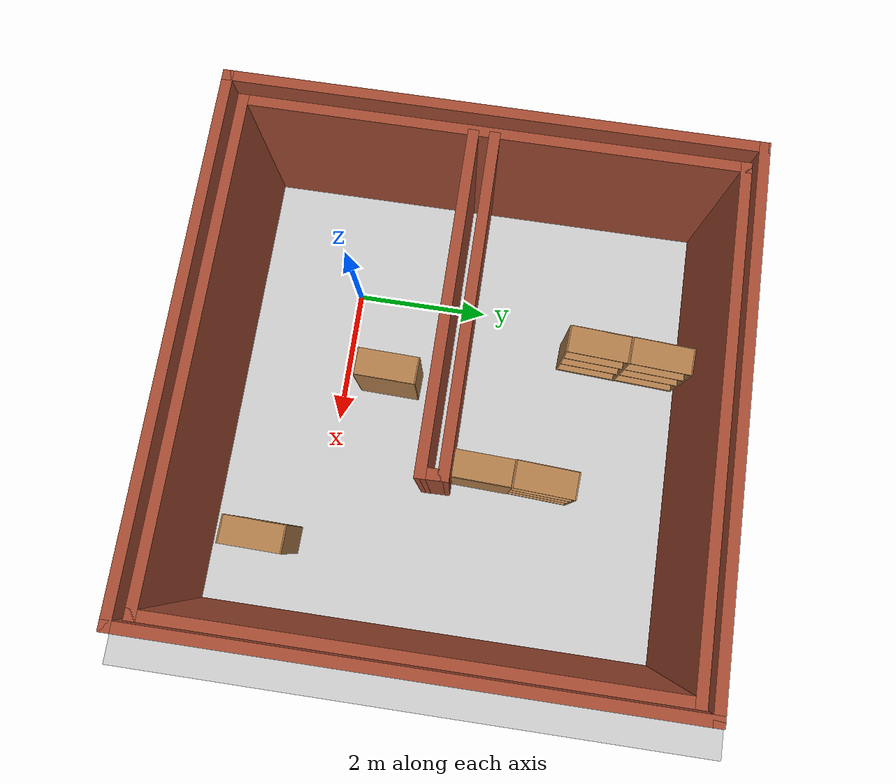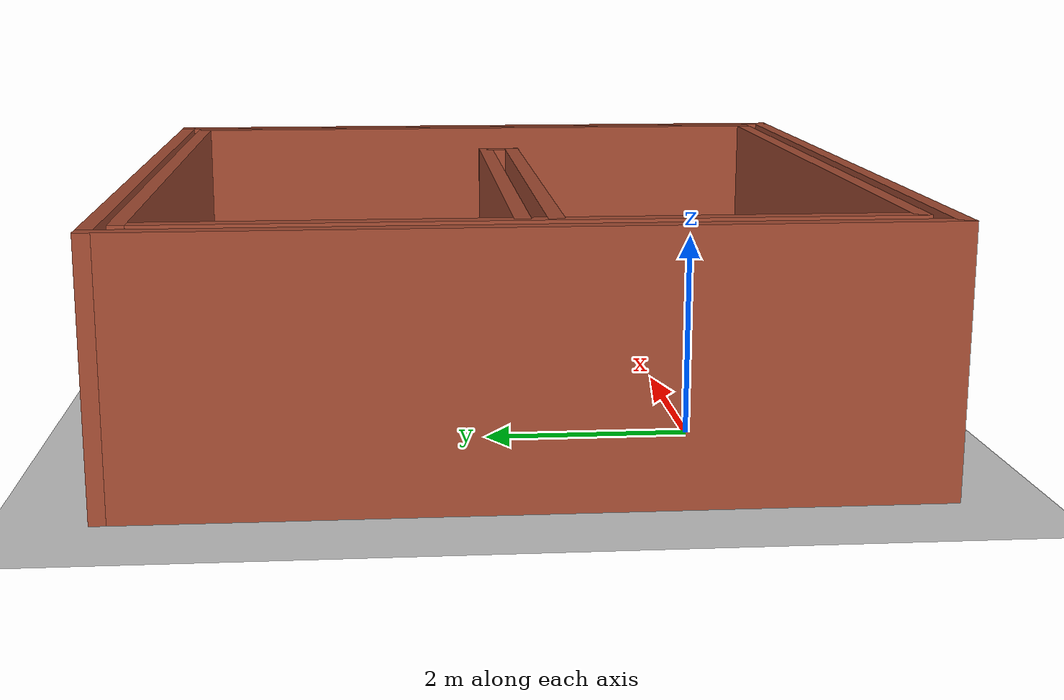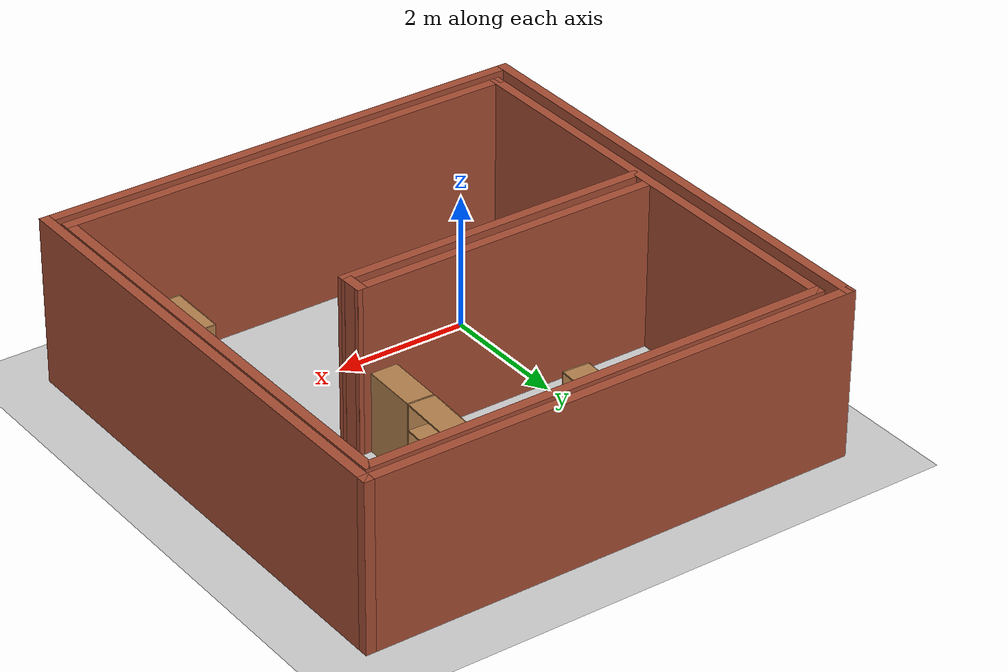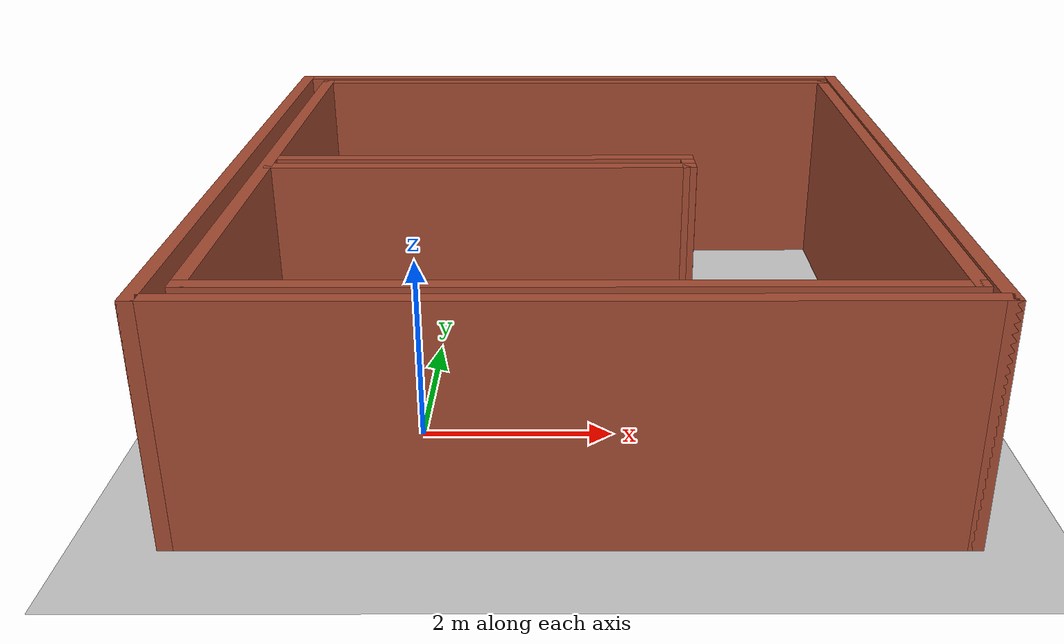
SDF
<sdf version="1.6">
 <world name="default">
  <light name="sun" type="directional">
   <pose>0 0 10 0 -0 0</pose>
   <diffuse>0.8 0.8 0.8 1</diffuse>
   <specular>0.2 0.2 0.2 1</specular>
   <attenuation>
    <range>1000</range>
    <constant>0.9</constant>
    <linear>0.01</linear>
    <quadratic>0.001</quadratic>
   </attenuation>
   <direction>-0.5 0.1 -0.9</direction>
  </light>
  <model name="ground_plane">
   <static>1</static>
   <link name="link">
    <collision name="collision">
     <geometry><plane><normal>0 0 1</normal><size>100 100</size></plane></geometry>
     <surface><friction><ode><mu>100</mu><mu2>50</mu2></ode></friction></surface>
    </collision>
    <visual name="visual">
     <cast_shadows>0</cast_shadows>
     <geometry><plane><normal>0 0 1</normal><size>100 100</size></plane></geometry>
     <material>
      <script><uri>file://media/materials/scripts/gazebo.material</uri><name>Gazebo/Grey</name></script>
     </material>
    </visual>
   </link>
  </model>
  <gravity>0 0 -9.8</gravity>
  <magnetic_field>6e-06 2.3e-05 -4.2e-05</magnetic_field>
  <atmosphere type="adiabatic"/>
  <physics name="default_physics" default="0" type="ode">
   <max_step_size>0.001</max_step_size>
   <real_time_factor>1</real_time_factor>
   <real_time_update_rate>1000</real_time_update_rate>
  </physics>
  <scene><ambient>0.4 0.4 0.4 1</ambient><background>0.7 0.7 0.7 1</background><shadows>1</shadows></scene>
  <spherical_coordinates>
   <surface_model>EARTH_WGS84</surface_model>
   <latitude_deg>0</latitude_deg>
   <longitude_deg>0</longitude_deg>
   <elevation>0</elevation>
   <heading_deg>0</heading_deg>
  </spherical_coordinates>
  <model name="room_mini">
   <pose>1.55832 1.74079 0 0 -0 0</pose>
   <link name="Wall_0">
    <collision name="Wall_0_Collision">
     <geometry><box><size>7 0.15 2.5</size></box></geometry>
     <pose>0 0 1.25 0 -0 0</pose>
    </collision>
    <visual name="Wall_0_Visual">
     <pose>0 0 1.25 0 -0 0</pose>
     <geometry><box><size>7 0.15 2.5</size></box></geometry>
     <material>
      <script><uri>file://media/materials/scripts/gazebo.material</uri><name>Gazebo/Bricks</name></script>
      <ambient>1 1 1 1</ambient>
     </material>
     <meta><layer>0</layer></meta>
    </visual>
    <pose>0.076061 -3.39774 0 0 -0 0</pose>
   </link>
   <link name="Wall_13">
    <collision name="Wall_13_Collision">
     <geometry><box><size>4.75 0.15 2.5</size></box></geometry>
     <pose>0 0 1.25 0 -0 0</pose>
    </collision>
    <visual name="Wall_13_Visual">
     <pose>0 0 1.25 0 -0 0</pose>
     <geometry><box><size>4.75 0.15 2.5</size></box></geometry>
     <material>
      <script><uri>file://media/materials/scripts/gazebo.material</uri><name>Gazebo/Bricks</name></script>
      <ambient>1 1 1 1</ambient>
     </material>
     <meta><layer>0</layer></meta>
    </visual>
    <pose>-0.985198 -0.23 0 0 -0 0</pose>
   </link>
   <link name="Wall_16">
    <collision name="Wall_16_Collision">
     <geometry><box><size>0.441128 0.15 2.5</size></box></geometry>
     <pose>0 0 1.25 0 -0 0</pose>
    </collision>
    <visual name="Wall_16_Visual">
     <pose>0 0 1.25 0 -0 0</pose>
     <geometry><box><size>0.441128 0.15 2.5</size></box></geometry>
     <material>
      <script><uri>file://media/materials/scripts/gazebo.material</uri><name>Gazebo/Bricks</name></script>
      <ambient>1 1 1 1</ambient>
     </material>
     <meta><layer>0</layer></meta>
    </visual>
    <pose>1.31175 -0.084468 0 0 -0 -1.54982</pose>
   </link>
   <link name="Wall_2">
    <collision name="Wall_2_Collision">
     <geometry><box><size>7 0.15 2.5</size></box></geometry>
     <pose>0 0 1.25 0 -0 0</pose>
    </collision>
    <visual name="Wall_2_Visual">
     <pose>0 0 1.25 0 -0 0</pose>
     <geometry><box><size>7 0.15 2.5</size></box></geometry>
     <material>
      <script><uri>file://media/materials/scripts/gazebo.material</uri><name>Gazebo/Bricks</name></script>
      <ambient>1 1 1 1</ambient>
     </material>
     <meta><layer>0</layer></meta>
    </visual>
    <pose>3.50116 0.027424 0 0 -0 1.57077</pose>
   </link>
   <link name="Wall_20">
    <collision name="Wall_20_Collision">
     <geometry><box><size>7.5 0.15 2.5</size></box></geometry>
     <pose>0 0 1.25 0 -0 0</pose>
    </collision>
    <visual name="Wall_20_Visual">
     <pose>0 0 1.25 0 -0 0</pose>
     <geometry><box><size>7.5 0.15 2.5</size></box></geometry>
     <material>
      <script><uri>file://media/materials/scripts/gazebo.material</uri><name>Gazebo/Bricks</name></script>
      <ambient>1 1 1 1</ambient>
     </material>
     <meta><layer>0</layer></meta>
    </visual>
    <pose>-3.675 0 0 0 -0 -1.5708</pose>
   </link>
   <link name="Wall_23">
    <collision name="Wall_23_Collision">
     <geometry><box><size>7.5 0.15 2.5</size></box></geometry>
     <pose>0 0 1.25 0 -0 0</pose>
    </collision>
    <visual name="Wall_23_Visual">
     <pose>0 0 1.25 0 -0 0</pose>
     <geometry><box><size>7.5 0.15 2.5</size></box></geometry>
     <material>
      <script><uri>file://media/materials/scripts/gazebo.material</uri><name>Gazebo/Bricks</name></script>
      <ambient>1 1 1 1</ambient>
     </material>
     <meta><layer>0</layer></meta>
    </visual>
    <pose>0 -3.675 0 0 -0 0</pose>
   </link>
   <link name="Wall_24">
    <collision name="Wall_24_Collision">
     <geometry><box><size>7.5 0.15 2.5</size></box></geometry>
     <pose>0 0 1.25 0 -0 0</pose>
    </collision>
    <visual name="Wall_24_Visual">
     <pose>0 0 1.25 0 -0 0</pose>
     <geometry><box><size>7.5 0.15 2.5</size></box></geometry>
     <material>
      <script><uri>file://media/materials/scripts/gazebo.material</uri><name>Gazebo/Bricks</name></script>
      <ambient>1 1 1 1</ambient>
     </material>
     <meta><layer>0</layer></meta>
    </visual>
    <pose>3.675 0 0 0 -0 1.5708</pose>
   </link>
   <link name="Wall_25">
    <collision name="Wall_25_Collision">
     <geometry><box><size>7.5 0.15 2.5</size></box></geometry>
     <pose>0 0 1.25 0 -0 0</pose>
    </collision>
    <visual name="Wall_25_Visual">
     <pose>0 0 1.25 0 -0 0</pose>
     <geometry><box><size>7.5 0.15 2.5</size></box></geometry>
     <material>
      <script><uri>file://media/materials/scripts/gazebo.material</uri><name>Gazebo/Bricks</name></script>
      <ambient>1 1 1 1</ambient>
     </material>
     <meta><layer>0</layer></meta>
    </visual>
    <pose>0 3.675 0 0 -0 3.14159</pose>
   </link>
   <link name="Wall_3">
    <collision name="Wall_3_Collision">
     <geometry><box><size>7 0.15 2.5</size></box></geometry>
     <pose>0 0 1.25 0 -0 0</pose>
    </collision>
    <visual name="Wall_3_Visual">
     <pose>0 0 1.25 0 -0 0</pose>
     <geometry><box><size>7 0.15 2.5</size></box></geometry>
     <material>
      <script><uri>file://media/materials/scripts/gazebo.material</uri><name>Gazebo/Bricks</name></script>
      <ambient>1 1 1 1</ambient>
     </material>
     <meta><layer>0</layer></meta>
    </visual>
    <pose>0.076264 3.45259 0 0 -0 3.14159</pose>
   </link>
   <link name="Wall_4">
    <collision name="Wall_4_Collision">
     <geometry><box><size>7 0.15 2.5</size></box></geometry>
     <pose>0 0 1.25 0 -0 0</pose>
    </collision>
    <visual name="Wall_4_Visual">
     <pose>0 0 1.25 0 -0 0</pose>
     <geometry><box><size>7 0.15 2.5</size></box></geometry>
     <material>
      <script><uri>file://media/materials/scripts/gazebo.material</uri><name>Gazebo/Bricks</name></script>
      <ambient>1 1 1 1</ambient>
     </material>
     <meta><layer>0</layer></meta>
    </visual>
    <pose>-3.34884 0.027424 0 0 -0 -1.57083</pose>
   </link>
   <link name="Wall_6">
    <collision name="Wall_6_Collision">
     <geometry><box><size>4.75 0.15 2.5</size></box></geometry>
     <pose>0 0 1.25 0 -0 0</pose>
    </collision>
    <visual name="Wall_6_Visual">
     <pose>0 0 1.25 0 -0 0</pose>
     <geometry><box><size>4.75 0.15 2.5</size></box></geometry>
     <material>
      <script><uri>file://media/materials/scripts/gazebo.material</uri><name>Gazebo/Bricks</name></script>
      <ambient>1 1 1 1</ambient>
     </material>
     <meta><layer>0</layer></meta>
    </visual>
    <pose>-0.991303 0.061064 0 0 -0 0</pose>
   </link>
   <static>1</static>
  </model>
  <model name="bookshelf">
   <static>1</static>
   <link name="link">
    <inertial><mass>1</mass></inertial>
    <collision name="back">
     <pose>0 0.005 0.6 0 -0 0</pose>
     <geometry><box><size>0.9 0.01 1.2</size></box></geometry>
    </collision>
    <visual name="visual1">
     <pose>0 0.005 0.6 0 -0 0</pose>
     <geometry><box><size>0.9 0.01 1.2</size></box></geometry>
     <material>
      <script><uri>file://media/materials/scripts/gazebo.material</uri><name>Gazebo/Wood</name></script>
     </material>
    </visual>
    <collision name="left_side">
     <pose>0.45 -0.195 0.6 0 -0 0</pose>
     <geometry><box><size>0.02 0.4 1.2</size></box></geometry>
    </collision>
    <visual name="visual2">
     <pose>0.45 -0.195 0.6 0 -0 0</pose>
     <geometry><box><size>0.02 0.4 1.2</size></box></geometry>
     <material>
      <script><uri>file://media/materials/scripts/gazebo.material</uri><name>Gazebo/Wood</name></script>
     </material>
    </visual>
    <collision name="right_side">
     <pose>-0.45 -0.195 0.6 0 -0 0</pose>
     <geometry><box><size>0.02 0.4 1.2</size></box></geometry>
    </collision>
    <visual name="visual3">
     <pose>-0.45 -0.195 0.6 0 -0 0</pose>
     <geometry><box><size>0.02 0.4 1.2</size></box></geometry>
     <material>
      <script><uri>file://media/materials/scripts/gazebo.material</uri><name>Gazebo/Wood</name></script>
     </material>
    </visual>
    <collision name="bottom">
     <pose>0 -0.195 0.03 0 -0 0</pose>
     <geometry><box><size>0.88 0.4 0.06</size></box></geometry>
    </collision>
    <visual name="visual4">
     <pose>0 -0.195 0.03 0 -0 0</pose>
     <geometry><box><size>0.88 0.4 0.06</size></box></geometry>
     <material>
      <script><uri>file://media/materials/scripts/gazebo.material</uri><name>Gazebo/Wood</name></script>
     </material>
    </visual>
    <collision name="top">
     <pose>0 -0.195 1.19 0 -0 0</pose>
     <geometry><box><size>0.88 0.4 0.02</size></box></geometry>
    </collision>
    <visual name="visual5">
     <pose>0 -0.195 1.19 0 -0 0</pose>
     <geometry><box><size>0.88 0.4 0.02</size></box></geometry>
     <material>
      <script><uri>file://media/materials/scripts/gazebo.material</uri><name>Gazebo/Wood</name></script>
     </material>
    </visual>
    <collision name="low_shelf">
     <pose>0 -0.195 0.43 0 -0 0</pose>
     <geometry><box><size>0.88 0.4 0.02</size></box></geometry>
    </collision>
    <visual name="visual6">
     <pose>0 -0.195 0.43 0 -0 0</pose>
     <geometry><box><size>0.88 0.4 0.02</size></box></geometry>
     <material>
      <script><uri>file://media/materials/scripts/gazebo.material</uri><name>Gazebo/Wood</name></script>
     </material>
    </visual>
    <collision name="high_shelf">
     <pose>0 -0.195 0.8 0 -0 0</pose>
     <geometry><box><size>0.88 0.4 0.02</size></box></geometry>
    </collision>
    <visual name="visual7">
     <pose>0 -0.195 0.8 0 -0 0</pose>
     <geometry><box><size>0.88 0.4 0.02</size></box></geometry>
     <material>
      <script><uri>file://media/materials/scripts/gazebo.material</uri><name>Gazebo/Wood</name></script>
     </material>
    </visual>
   </link>
   <pose>1.50579 0.711158 0 0 0 -1.59655</pose>
  </model>
  <model name="bookshelf_0">
   <static>1</static>
   <link name="link">
    <inertial><mass>1</mass></inertial>
    <collision name="back">
     <pose>0 0.005 0.6 0 -0 0</pose>
     <geometry><box><size>0.9 0.01 1.2</size></box></geometry>
    </collision>
    <visual name="visual1">
     <pose>0 0.005 0.6 0 -0 0</pose>
     <geometry><box><size>0.9 0.01 1.2</size></box></geometry>
     <material>
      <script><uri>file://media/materials/scripts/gazebo.material</uri><name>Gazebo/Wood</name></script>
     </material>
    </visual>
    <collision name="left_side">
     <pose>0.45 -0.195 0.6 0 -0 0</pose>
     <geometry><box><size>0.02 0.4 1.2</size></box></geometry>
    </collision>
    <visual name="visual2">
     <pose>0.45 -0.195 0.6 0 -0 0</pose>
     <geometry><box><size>0.02 0.4 1.2</size></box></geometry>
     <material>
      <script><uri>file://media/materials/scripts/gazebo.material</uri><name>Gazebo/Wood</name></script>
     </material>
    </visual>
    <collision name="right_side">
     <pose>-0.45 -0.195 0.6 0 -0 0</pose>
     <geometry><box><size>0.02 0.4 1.2</size></box></geometry>
    </collision>
    <visual name="visual3">
     <pose>-0.45 -0.195 0.6 0 -0 0</pose>
     <geometry><box><size>0.02 0.4 1.2</size></box></geometry>
     <material>
      <script><uri>file://media/materials/scripts/gazebo.material</uri><name>Gazebo/Wood</name></script>
     </material>
    </visual>
    <collision name="bottom">
     <pose>0 -0.195 0.03 0 -0 0</pose>
     <geometry><box><size>0.88 0.4 0.06</size></box></geometry>
    </collision>
    <visual name="visual4">
     <pose>0 -0.195 0.03 0 -0 0</pose>
     <geometry><box><size>0.88 0.4 0.06</size></box></geometry>
     <material>
      <script><uri>file://media/materials/scripts/gazebo.material</uri><name>Gazebo/Wood</name></script>
     </material>
    </visual>
    <collision name="top">
     <pose>0 -0.195 1.19 0 -0 0</pose>
     <geometry><box><size>0.88 0.4 0.02</size></box></geometry>
    </collision>
    <visual name="visual5">
     <pose>0 -0.195 1.19 0 -0 0</pose>
     <geometry><box><size>0.88 0.4 0.02</size></box></geometry>
     <material>
      <script><uri>file://media/materials/scripts/gazebo.material</uri><name>Gazebo/Wood</name></script>
     </material>
    </visual>
    <collision name="low_shelf">
     <pose>0 -0.195 0.43 0 -0 0</pose>
     <geometry><box><size>0.88 0.4 0.02</size></box></geometry>
    </collision>
    <visual name="visual6">
     <pose>0 -0.195 0.43 0 -0 0</pose>
     <geometry><box><size>0.88 0.4 0.02</size></box></geometry>
     <material>
      <script><uri>file://media/materials/scripts/gazebo.material</uri><name>Gazebo/Wood</name></script>
     </material>
    </visual>
    <collision name="high_shelf">
     <pose>0 -0.195 0.8 0 -0 0</pose>
     <geometry><box><size>0.88 0.4 0.02</size></box></geometry>
    </collision>
    <visual name="visual7">
     <pose>0 -0.195 0.8 0 -0 0</pose>
     <geometry><box><size>0.88 0.4 0.02</size></box></geometry>
     <material>
      <script><uri>file://media/materials/scripts/gazebo.material</uri><name>Gazebo/Wood</name></script>
     </material>
    </visual>
   </link>
   <pose>3.74014 -0.731154 0 0 -0 1.55204</pose>
  </model>
  <model name="bookshelf_1">
   <static>1</static>
   <link name="link">
    <inertial><mass>1</mass></inertial>
    <collision name="back">
     <pose>0 0.005 0.6 0 -0 0</pose>
     <geometry><box><size>0.9 0.01 1.2</size></box></geometry>
    </collision>
    <visual name="visual1">
     <pose>0 0.005 0.6 0 -0 0</pose>
     <geometry><box><size>0.9 0.01 1.2</size></box></geometry>
     <material>
      <script><uri>file://media/materials/scripts/gazebo.material</uri><name>Gazebo/Wood</name></script>
     </material>
    </visual>
    <collision name="left_side">
     <pose>0.45 -0.195 0.6 0 -0 0</pose>
     <geometry><box><size>0.02 0.4 1.2</size></box></geometry>
    </collision>
    <visual name="visual2">
     <pose>0.45 -0.195 0.6 0 -0 0</pose>
     <geometry><box><size>0.02 0.4 1.2</size></box></geometry>
     <material>
      <script><uri>file://media/materials/scripts/gazebo.material</uri><name>Gazebo/Wood</name></script>
     </material>
    </visual>
    <collision name="right_side">
     <pose>-0.45 -0.195 0.6 0 -0 0</pose>
     <geometry><box><size>0.02 0.4 1.2</size></box></geometry>
    </collision>
    <visual name="visual3">
     <pose>-0.45 -0.195 0.6 0 -0 0</pose>
     <geometry><box><size>0.02 0.4 1.2</size></box></geometry>
     <material>
      <script><uri>file://media/materials/scripts/gazebo.material</uri><name>Gazebo/Wood</name></script>
     </material>
    </visual>
    <collision name="bottom">
     <pose>0 -0.195 0.03 0 -0 0</pose>
     <geometry><box><size>0.88 0.4 0.06</size></box></geometry>
    </collision>
    <visual name="visual4">
     <pose>0 -0.195 0.03 0 -0 0</pose>
     <geometry><box><size>0.88 0.4 0.06</size></box></geometry>
     <material>
      <script><uri>file://media/materials/scripts/gazebo.material</uri><name>Gazebo/Wood</name></script>
     </material>
    </visual>
    <collision name="top">
     <pose>0 -0.195 1.19 0 -0 0</pose>
     <geometry><box><size>0.88 0.4 0.02</size></box></geometry>
    </collision>
    <visual name="visual5">
     <pose>0 -0.195 1.19 0 -0 0</pose>
     <geometry><box><size>0.88 0.4 0.02</size></box></geometry>
     <material>
      <script><uri>file://media/materials/scripts/gazebo.material</uri><name>Gazebo/Wood</name></script>
     </material>
    </visual>
    <collision name="low_shelf">
     <pose>0 -0.195 0.43 0 -0 0</pose>
     <geometry><box><size>0.88 0.4 0.02</size></box></geometry>
    </collision>
    <visual name="visual6">
     <pose>0 -0.195 0.43 0 -0 0</pose>
     <geometry><box><size>0.88 0.4 0.02</size></box></geometry>
     <material>
      <script><uri>file://media/materials/scripts/gazebo.material</uri><name>Gazebo/Wood</name></script>
     </material>
    </visual>
    <collision name="high_shelf">
     <pose>0 -0.195 0.8 0 -0 0</pose>
     <geometry><box><size>0.88 0.4 0.02</size></box></geometry>
    </collision>
    <visual name="visual7">
     <pose>0 -0.195 0.8 0 -0 0</pose>
     <geometry><box><size>0.88 0.4 0.02</size></box></geometry>
     <material>
      <script><uri>file://media/materials/scripts/gazebo.material</uri><name>Gazebo/Wood</name></script>
     </material>
    </visual>
   </link>
   <pose>2.75993 2.28299 0 0 0 -1.60533</pose>
  </model>
  <model name="bookshelf_2">
   <static>1</static>
   <link name="link">
    <inertial><mass>1</mass></inertial>
    <collision name="back">
     <pose>0 0.005 0.6 0 -0 0</pose>
     <geometry><box><size>0.9 0.01 1.2</size></box></geometry>
    </collision>
    <visual name="visual1">
     <pose>0 0.005 0.6 0 -0 0</pose>
     <geometry><box><size>0.9 0.01 1.2</size></box></geometry>
     <material>
      <script><uri>file://media/materials/scripts/gazebo.material</uri><name>Gazebo/Wood</name></script>
     </material>
    </visual>
    <collision name="left_side">
     <pose>0.45 -0.195 0.6 0 -0 0</pose>
     <geometry><box><size>0.02 0.4 1.2</size></box></geometry>
    </collision>
    <visual name="visual2">
     <pose>0.45 -0.195 0.6 0 -0 0</pose>
     <geometry><box><size>0.02 0.4 1.2</size></box></geometry>
     <material>
      <script><uri>file://media/materials/scripts/gazebo.material</uri><name>Gazebo/Wood</name></script>
     </material>
    </visual>
    <collision name="right_side">
     <pose>-0.45 -0.195 0.6 0 -0 0</pose>
     <geometry><box><size>0.02 0.4 1.2</size></box></geometry>
    </collision>
    <visual name="visual3">
     <pose>-0.45 -0.195 0.6 0 -0 0</pose>
     <geometry><box><size>0.02 0.4 1.2</size></box></geometry>
     <material>
      <script><uri>file://media/materials/scripts/gazebo.material</uri><name>Gazebo/Wood</name></script>
     </material>
    </visual>
    <collision name="bottom">
     <pose>0 -0.195 0.03 0 -0 0</pose>
     <geometry><box><size>0.88 0.4 0.06</size></box></geometry>
    </collision>
    <visual name="visual4">
     <pose>0 -0.195 0.03 0 -0 0</pose>
     <geometry><box><size>0.88 0.4 0.06</size></box></geometry>
     <material>
      <script><uri>file://media/materials/scripts/gazebo.material</uri><name>Gazebo/Wood</name></script>
     </material>
    </visual>
    <collision name="top">
     <pose>0 -0.195 1.19 0 -0 0</pose>
     <geometry><box><size>0.88 0.4 0.02</size></box></geometry>
    </collision>
    <visual name="visual5">
     <pose>0 -0.195 1.19 0 -0 0</pose>
     <geometry><box><size>0.88 0.4 0.02</size></box></geometry>
     <material>
      <script><uri>file://media/materials/scripts/gazebo.material</uri><name>Gazebo/Wood</name></script>
     </material>
    </visual>
    <collision name="low_shelf">
     <pose>0 -0.195 0.43 0 -0 0</pose>
     <geometry><box><size>0.88 0.4 0.02</size></box></geometry>
    </collision>
    <visual name="visual6">
     <pose>0 -0.195 0.43 0 -0 0</pose>
     <geometry><box><size>0.88 0.4 0.02</size></box></geometry>
     <material>
      <script><uri>file://media/materials/scripts/gazebo.material</uri><name>Gazebo/Wood</name></script>
     </material>
    </visual>
    <collision name="high_shelf">
     <pose>0 -0.195 0.8 0 -0 0</pose>
     <geometry><box><size>0.88 0.4 0.02</size></box></geometry>
    </collision>
    <visual name="visual7">
     <pose>0 -0.195 0.8 0 -0 0</pose>
     <geometry><box><size>0.88 0.4 0.02</size></box></geometry>
     <material>
      <script><uri>file://media/materials/scripts/gazebo.material</uri><name>Gazebo/Wood</name></script>
     </material>
    </visual>
   </link>
   <pose>2.40863 3.20923 0 0 -0 1.51891</pose>
  </model>
  <model name="bookshelf_2_clone">
   <static>1</static>
   <link name="link">
    <inertial><mass>1</mass></inertial>
    <collision name="back">
     <pose>0 0.005 0.6 0 -0 0</pose>
     <geometry><box><size>0.9 0.01 1.2</size></box></geometry>
    </collision>
    <visual name="visual1">
     <pose>0 0.005 0.6 0 -0 0</pose>
     <geometry><box><size>0.9 0.01 1.2</size></box></geometry>
     <material>
      <script><uri>file://media/materials/scripts/gazebo.material</uri><name>Gazebo/Wood</name></script>
     </material>
    </visual>
    <collision name="left_side">
     <pose>0.45 -0.195 0.6 0 -0 0</pose>
     <geometry><box><size>0.02 0.4 1.2</size></box></geometry>
    </collision>
    <visual name="visual2">
     <pose>0.45 -0.195 0.6 0 -0 0</pose>
     <geometry><box><size>0.02 0.4 1.2</size></box></geometry>
     <material>
      <script><uri>file://media/materials/scripts/gazebo.material</uri><name>Gazebo/Wood</name></script>
     </material>
    </visual>
    <collision name="right_side">
     <pose>-0.45 -0.195 0.6 0 -0 0</pose>
     <geometry><box><size>0.02 0.4 1.2</size></box></geometry>
    </collision>
    <visual name="visual3">
     <pose>-0.45 -0.195 0.6 0 -0 0</pose>
     <geometry><box><size>0.02 0.4 1.2</size></box></geometry>
     <material>
      <script><uri>file://media/materials/scripts/gazebo.material</uri><name>Gazebo/Wood</name></script>
     </material>
    </visual>
    <collision name="bottom">
     <pose>0 -0.195 0.03 0 -0 0</pose>
     <geometry><box><size>0.88 0.4 0.06</size></box></geometry>
    </collision>
    <visual name="visual4">
     <pose>0 -0.195 0.03 0 -0 0</pose>
     <geometry><box><size>0.88 0.4 0.06</size></box></geometry>
     <material>
      <script><uri>file://media/materials/scripts/gazebo.material</uri><name>Gazebo/Wood</name></script>
     </material>
    </visual>
    <collision name="top">
     <pose>0 -0.195 1.19 0 -0 0</pose>
     <geometry><box><size>0.88 0.4 0.02</size></box></geometry>
    </collision>
    <visual name="visual5">
     <pose>0 -0.195 1.19 0 -0 0</pose>
     <geometry><box><size>0.88 0.4 0.02</size></box></geometry>
     <material>
      <script><uri>file://media/materials/scripts/gazebo.material</uri><name>Gazebo/Wood</name></script>
     </material>
    </visual>
    <collision name="low_shelf">
     <pose>0 -0.195 0.43 0 -0 0</pose>
     <geometry><box><size>0.88 0.4 0.02</size></box></geometry>
    </collision>
    <visual name="visual6">
     <pose>0 -0.195 0.43 0 -0 0</pose>
     <geometry><box><size>0.88 0.4 0.02</size></box></geometry>
     <material>
      <script><uri>file://media/materials/scripts/gazebo.material</uri><name>Gazebo/Wood</name></script>
     </material>
    </visual>
    <collision name="high_shelf">
     <pose>0 -0.195 0.8 0 -0 0</pose>
     <geometry><box><size>0.88 0.4 0.02</size></box></geometry>
    </collision>
    <visual name="visual7">
     <pose>0 -0.195 0.8 0 -0 0</pose>
     <geometry><box><size>0.88 0.4 0.02</size></box></geometry>
     <material>
      <script><uri>file://media/materials/scripts/gazebo.material</uri><name>Gazebo/Wood</name></script>
     </material>
    </visual>
   </link>
   <pose>0.397216 4.64215 0 0 -0 1.51891</pose>
  </model>
  <model name="bookshelf_2_clone_0">
   <static>1</static>
   <link name="link">
    <inertial><mass>1</mass></inertial>
    <collision name="back">
     <pose>0 0.005 0.6 0 -0 0</pose>
     <geometry><box><size>0.9 0.01 1.2</size></box></geometry>
    </collision>
    <visual name="visual1">
     <pose>0 0.005 0.6 0 -0 0</pose>
     <geometry><box><size>0.9 0.01 1.2</size></box></geometry>
     <material>
      <script><uri>file://media/materials/scripts/gazebo.material</uri><name>Gazebo/Wood</name></script>
     </material>
    </visual>
    <collision name="left_side">
     <pose>0.45 -0.195 0.6 0 -0 0</pose>
     <geometry><box><size>0.02 0.4 1.2</size></box></geometry>
    </collision>
    <visual name="visual2">
     <pose>0.45 -0.195 0.6 0 -0 0</pose>
     <geometry><box><size>0.02 0.4 1.2</size></box></geometry>
     <material>
      <script><uri>file://media/materials/scripts/gazebo.material</uri><name>Gazebo/Wood</name></script>
     </material>
    </visual>
    <collision name="right_side">
     <pose>-0.45 -0.195 0.6 0 -0 0</pose>
     <geometry><box><size>0.02 0.4 1.2</size></box></geometry>
    </collision>
    <visual name="visual3">
     <pose>-0.45 -0.195 0.6 0 -0 0</pose>
     <geometry><box><size>0.02 0.4 1.2</size></box></geometry>
     <material>
      <script><uri>file://media/materials/scripts/gazebo.material</uri><name>Gazebo/Wood</name></script>
     </material>
    </visual>
    <collision name="bottom">
     <pose>0 -0.195 0.03 0 -0 0</pose>
     <geometry><box><size>0.88 0.4 0.06</size></box></geometry>
    </collision>
    <visual name="visual4">
     <pose>0 -0.195 0.03 0 -0 0</pose>
     <geometry><box><size>0.88 0.4 0.06</size></box></geometry>
     <material>
      <script><uri>file://media/materials/scripts/gazebo.material</uri><name>Gazebo/Wood</name></script>
     </material>
    </visual>
    <collision name="top">
     <pose>0 -0.195 1.19 0 -0 0</pose>
     <geometry><box><size>0.88 0.4 0.02</size></box></geometry>
    </collision>
    <visual name="visual5">
     <pose>0 -0.195 1.19 0 -0 0</pose>
     <geometry><box><size>0.88 0.4 0.02</size></box></geometry>
     <material>
      <script><uri>file://media/materials/scripts/gazebo.material</uri><name>Gazebo/Wood</name></script>
     </material>
    </visual>
    <collision name="low_shelf">
     <pose>0 -0.195 0.43 0 -0 0</pose>
     <geometry><box><size>0.88 0.4 0.02</size></box></geometry>
    </collision>
    <visual name="visual6">
     <pose>0 -0.195 0.43 0 -0 0</pose>
     <geometry><box><size>0.88 0.4 0.02</size></box></geometry>
     <material>
      <script><uri>file://media/materials/scripts/gazebo.material</uri><name>Gazebo/Wood</name></script>
     </material>
    </visual>
    <collision name="high_shelf">
     <pose>0 -0.195 0.8 0 -0 0</pose>
     <geometry><box><size>0.88 0.4 0.02</size></box></geometry>
    </collision>
    <visual name="visual7">
     <pose>0 -0.195 0.8 0 -0 0</pose>
     <geometry><box><size>0.88 0.4 0.02</size></box></geometry>
     <material>
      <script><uri>file://media/materials/scripts/gazebo.material</uri><name>Gazebo/Wood</name></script>
     </material>
    </visual>
   </link>
   <pose>0.352676 3.72757 0 0 -0 1.51891</pose>
  </model>
 </world>
</sdf>
